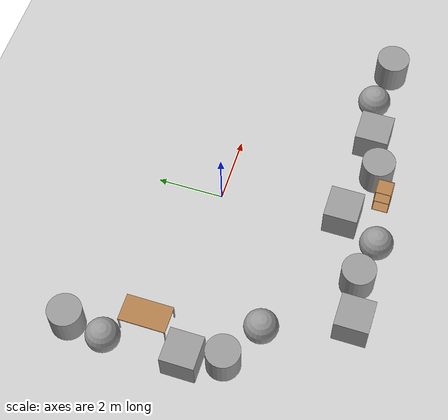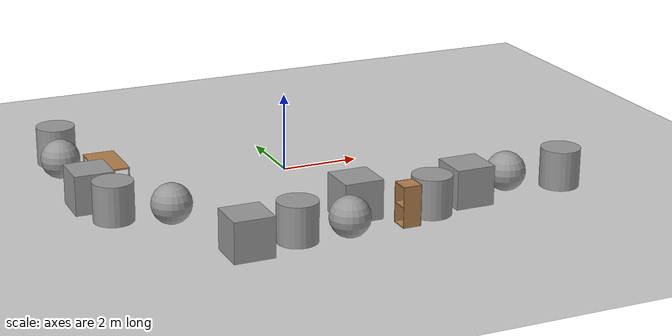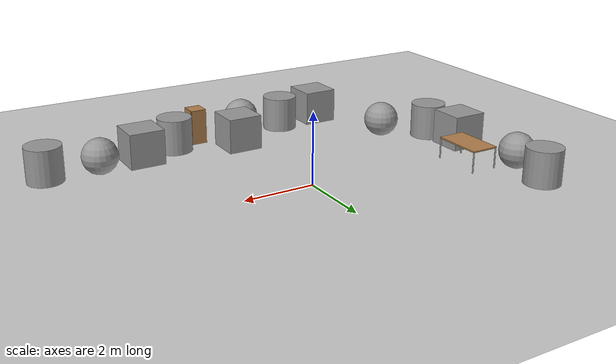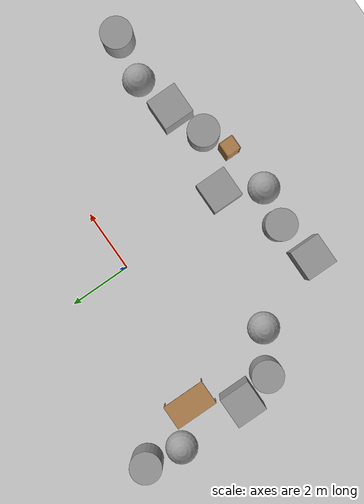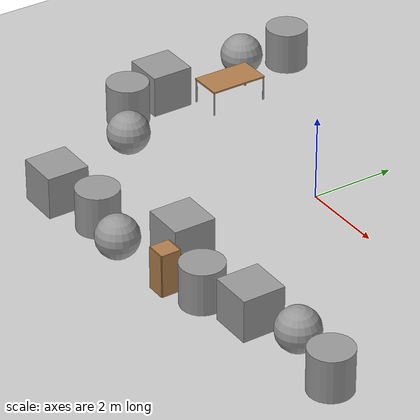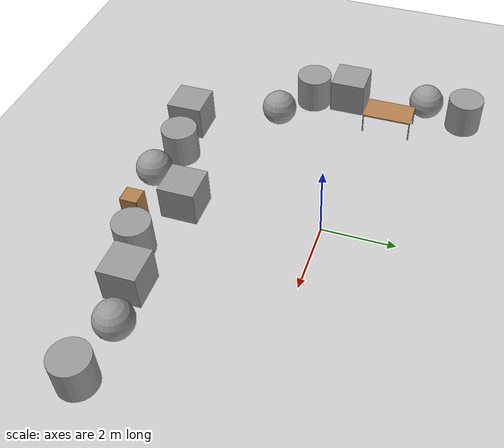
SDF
<sdf version="1.7">
 <world name="default">
  <light name="sun" type="directional">
   <pose>0 0 10 0 -0 0</pose>
   <diffuse>0.8 0.8 0.8 1</diffuse>
   <specular>0.2 0.2 0.2 1</specular>
   <attenuation>
    <range>1000</range>
    <constant>0.9</constant>
    <linear>0.01</linear>
    <quadratic>0.001</quadratic>
   </attenuation>
   <direction>-0.5 0.1 -0.9</direction>
   <spot><inner_angle>0</inner_angle><outer_angle>0</outer_angle><falloff>0</falloff></spot>
  </light>
  <model name="ground_plane">
   <static>1</static>
   <link name="link">
    <collision name="collision">
     <geometry><plane><normal>0 0 1</normal><size>100 100</size></plane></geometry>
     <surface><friction><ode><mu>100</mu><mu2>50</mu2></ode></friction></surface>
    </collision>
    <visual name="visual">
     <cast_shadows>0</cast_shadows>
     <geometry><plane><normal>0 0 1</normal><size>100 100</size></plane></geometry>
     <material>
      <script><uri>file://media/materials/scripts/gazebo.material</uri><name>Gazebo/Grey</name></script>
     </material>
    </visual>
   </link>
  </model>
  <gravity>0 0 -9.8</gravity>
  <magnetic_field>6e-06 2.3e-05 -4.2e-05</magnetic_field>
  <atmosphere type="adiabatic"/>
  <physics name="default_physics" default="0" type="ode">
   <max_step_size>0.001</max_step_size>
   <real_time_factor>1</real_time_factor>
   <real_time_update_rate>1000</real_time_update_rate>
  </physics>
  <scene><ambient>0.4 0.4 0.4 1</ambient><background>0.7 0.7 0.7 1</background><shadows>1</shadows></scene>
  <audio><device>default</device></audio>
  <spherical_coordinates>
   <surface_model>EARTH_WGS84</surface_model>
   <latitude_deg>0</latitude_deg>
   <longitude_deg>0</longitude_deg>
   <elevation>0</elevation>
   <heading_deg>0</heading_deg>
  </spherical_coordinates>
  <model name="cabinet">
   <static>1</static>
   <link name="cabinet_bottom_plate">
    <inertial>
     <pose>0 0 -1 0 -0 0</pose>
     <inertia><ixx>2.05</ixx><ixy>0</ixy><ixz>0</ixz><iyy>2.05</iyy><iyz>0</iyz><izz>2.05</izz></inertia>
     <mass>25</mass>
    </inertial>
    <collision name="cabinet_bottom_plate_geom">
     <pose>0 0 0.01 0 -0 0</pose>
     <geometry><box><size>0.45 0.45 0.02</size></box></geometry>
    </collision>
    <visual name="cabinet_bottom_plate_geom_visual">
     <pose>0 0 0.01 0 -0 0</pose>
     <geometry><box><size>0.45 0.45 0.02</size></box></geometry>
     <material>
      <script><uri>file://media/materials/scripts/gazebo.material</uri><name>Gazebo/Wood</name></script>
     </material>
    </visual>
    <collision name="cabinet_bottom_plate_geom_cabinet_back_plate">
     <pose>0.235 0 0.51 0 -0 0</pose>
     <geometry><box><size>0.02 0.45 1.02</size></box></geometry>
    </collision>
    <visual name="cabinet_bottom_plate_geom_cabinet_back_plate_visual">
     <pose>0.235 0 0.51 0 -0 0</pose>
     <geometry><box><size>0.02 0.45 1.02</size></box></geometry>
     <material>
      <script><uri>file://media/materials/scripts/gazebo.material</uri><name>Gazebo/Wood</name></script>
     </material>
    </visual>
    <collision name="cabinet_bottom_plate_geom_cabinet_left_plate">
     <pose>0 0.235 0.51 0 -0 0</pose>
     <geometry><box><size>0.45 0.02 1.02</size></box></geometry>
    </collision>
    <visual name="cabinet_bottom_plate_geom_cabinet_left_plate_visual">
     <pose>0 0.235 0.51 0 -0 0</pose>
     <geometry><box><size>0.45 0.02 1.02</size></box></geometry>
     <material>
      <script><uri>file://media/materials/scripts/gazebo.material</uri><name>Gazebo/Wood</name></script>
     </material>
    </visual>
    <collision name="cabinet_bottom_plate_geom_cabinet_middle_plate">
     <pose>0 0 0.51 0 -0 0</pose>
     <geometry><box><size>0.45 0.45 0.02</size></box></geometry>
    </collision>
    <visual name="cabinet_bottom_plate_geom_cabinet_middle_plate_visual">
     <pose>0 0 0.51 0 -0 0</pose>
     <geometry><box><size>0.45 0.45 0.02</size></box></geometry>
     <material>
      <script><uri>file://media/materials/scripts/gazebo.material</uri><name>Gazebo/Wood</name></script>
     </material>
    </visual>
    <collision name="cabinet_bottom_plate_geom_cabinet_right_plate">
     <pose>0 -0.235 0.51 0 -0 0</pose>
     <geometry><box><size>0.45 0.02 1.02</size></box></geometry>
    </collision>
    <visual name="cabinet_bottom_plate_geom_cabinet_right_plate_visual">
     <pose>0 -0.235 0.51 0 -0 0</pose>
     <geometry><box><size>0.45 0.02 1.02</size></box></geometry>
     <material>
      <script><uri>file://media/materials/scripts/gazebo.material</uri><name>Gazebo/Wood</name></script>
     </material>
    </visual>
    <collision name="cabinet_bottom_plate_geom_cabinet_top_plate">
     <pose>0 0 1.01 0 -0 0</pose>
     <geometry><box><size>0.45 0.45 0.02</size></box></geometry>
    </collision>
    <visual name="cabinet_bottom_plate_geom_cabinet_top_plate_visual">
     <pose>0 0 1.01 0 -0 0</pose>
     <geometry><box><size>0.45 0.45 0.02</size></box></geometry>
     <material>
      <script><uri>file://media/materials/scripts/gazebo.material</uri><name>Gazebo/Wood</name></script>
     </material>
    </visual>
   </link>
   <pose>1.18875 -4.65304 0 0 -0 0</pose>
  </model>
  <model name="table_short">
   <link name="link">
    <inertial>
     <inertia><ixx>1</ixx><ixy>0</ixy><ixz>0</ixz><iyy>1</iyy><iyz>0</iyz><izz>1</izz></inertia>
     <mass>1</mass>
    </inertial>
    <visual name="visual1">
     <pose>0 0 0.6 0 -0 0</pose>
     <geometry><box><size>1.4 0.8 0.04</size></box></geometry>
     <material>
      <script><uri>file://media/materials/scripts/gazebo.material</uri><name>Gazebo/Wood</name></script>
      <ambient>1 1 1 1</ambient>
      <diffuse>1 1 1 1</diffuse>
      <specular>0.2 0.2 0.2 1</specular>
      <emissive>0 0 0 1</emissive>
      <shader type="vertex"><normal_map>__default__</normal_map></shader>
     </material>
    </visual>
    <visual name="front_left_leg">
     <pose>0.68 0.38 0.3 0 -0 0</pose>
     <geometry><cylinder><radius>0.02</radius><length>0.6</length></cylinder></geometry>
     <material>
      <script><uri>file://media/materials/scripts/gazebo.material</uri><name>Gazebo/Grey</name></script>
      <ambient>0.3 0.3 0.3 1</ambient>
      <diffuse>0.7 0.7 0.7 1</diffuse>
      <specular>0.01 0.01 0.01 1</specular>
      <emissive>0 0 0 1</emissive>
      <shader type="vertex"><normal_map>__default__</normal_map></shader>
     </material>
    </visual>
    <visual name="front_right_leg">
     <pose>0.68 -0.38 0.3 0 -0 0</pose>
     <geometry><cylinder><radius>0.02</radius><length>0.6</length></cylinder></geometry>
     <material>
      <script><uri>file://media/materials/scripts/gazebo.material</uri><name>Gazebo/Grey</name></script>
      <ambient>0.3 0.3 0.3 1</ambient>
      <diffuse>0.7 0.7 0.7 1</diffuse>
      <specular>0.01 0.01 0.01 1</specular>
      <emissive>0 0 0 1</emissive>
      <shader type="vertex"><normal_map>__default__</normal_map></shader>
     </material>
    </visual>
    <visual name="back_right_leg">
     <pose>-0.68 -0.38 0.3 0 -0 0</pose>
     <geometry><cylinder><radius>0.02</radius><length>0.6</length></cylinder></geometry>
     <material>
      <script><uri>file://media/materials/scripts/gazebo.material</uri><name>Gazebo/Grey</name></script>
      <ambient>0.3 0.3 0.3 1</ambient>
      <diffuse>0.7 0.7 0.7 1</diffuse>
      <specular>0.01 0.01 0.01 1</specular>
      <emissive>0 0 0 1</emissive>
      <shader type="vertex"><normal_map>__default__</normal_map></shader>
     </material>
    </visual>
    <visual name="back_left_leg">
     <pose>-0.68 0.38 0.3 0 -0 0</pose>
     <geometry><cylinder><radius>0.02</radius><length>0.6</length></cylinder></geometry>
     <material>
      <script><uri>file://media/materials/scripts/gazebo.material</uri><name>Gazebo/Grey</name></script>
      <ambient>0.3 0.3 0.3 1</ambient>
      <diffuse>0.7 0.7 0.7 1</diffuse>
      <specular>0.01 0.01 0.01 1</specular>
      <emissive>0 0 0 1</emissive>
      <shader type="vertex"><normal_map>__default__</normal_map></shader>
     </material>
    </visual>
    <collision name="front_left_leg">
     <pose>0.68 0.38 0.3 0 -0 0</pose>
     <geometry><cylinder><radius>0.02</radius><length>0.6</length></cylinder></geometry>
     <surface>
      <friction>
       <ode><mu>1</mu><mu2>1</mu2><fdir1>0 0 0</fdir1><slip1>0</slip1><slip2>0</slip2></ode>
       <torsional>
        <coefficient>1</coefficient>
        <patch_radius>0</patch_radius>
        <surface_radius>0</surface_radius>
        <use_patch_radius>1</use_patch_radius>
        <ode><slip>0</slip></ode>
       </torsional>
      </friction>
      <bounce><restitution_coefficient>0</restitution_coefficient><threshold>1e+06</threshold></bounce>
      <contact>
       <collide_without_contact>0</collide_without_contact>
       <collide_without_contact_bitmask>1</collide_without_contact_bitmask>
       <collide_bitmask>1</collide_bitmask>
       <ode>
        <soft_cfm>0</soft_cfm>
        <soft_erp>0.2</soft_erp>
        <kp>1e+13</kp>
        <kd>1</kd>
        <max_vel>0.01</max_vel>
        <min_depth>0</min_depth>
       </ode>
       <bullet>
        <split_impulse>1</split_impulse>
        <split_impulse_penetration_threshold>-0.01</split_impulse_penetration_threshold>
        <soft_cfm>0</soft_cfm>
        <soft_erp>0.2</soft_erp>
        <kp>1e+13</kp>
        <kd>1</kd>
       </bullet>
      </contact>
     </surface>
    </collision>
    <collision name="surface">
     <pose>0 0 0.6 0 -0 0</pose>
     <geometry><box><size>1.5 0.8 0.03</size></box></geometry>
     <surface>
      <friction>
       <ode><mu>0.6</mu><mu2>0.6</mu2><fdir1>0 0 0</fdir1><slip1>0</slip1><slip2>0</slip2></ode>
       <torsional>
        <coefficient>1</coefficient>
        <patch_radius>0</patch_radius>
        <surface_radius>0</surface_radius>
        <use_patch_radius>1</use_patch_radius>
        <ode><slip>0</slip></ode>
       </torsional>
      </friction>
      <bounce><restitution_coefficient>0</restitution_coefficient><threshold>1e+06</threshold></bounce>
      <contact>
       <collide_without_contact>0</collide_without_contact>
       <collide_without_contact_bitmask>1</collide_without_contact_bitmask>
       <collide_bitmask>1</collide_bitmask>
       <ode>
        <soft_cfm>0</soft_cfm>
        <soft_erp>0.2</soft_erp>
        <kp>1e+13</kp>
        <kd>1</kd>
        <max_vel>0.01</max_vel>
        <min_depth>0</min_depth>
       </ode>
       <bullet>
        <split_impulse>1</split_impulse>
        <split_impulse_penetration_threshold>-0.01</split_impulse_penetration_threshold>
        <soft_cfm>0</soft_cfm>
        <soft_erp>0.2</soft_erp>
        <kp>1e+13</kp>
        <kd>1</kd>
       </bullet>
      </contact>
     </surface>
    </collision>
    <collision name="back_right_leg">
     <pose>-0.68 -0.38 0.3 0 -0 0</pose>
     <geometry><cylinder><radius>0.02</radius><length>0.6</length></cylinder></geometry>
     <surface>
      <friction>
       <ode><mu>1</mu><mu2>1</mu2><fdir1>0 0 0</fdir1><slip1>0</slip1><slip2>0</slip2></ode>
       <torsional>
        <coefficient>1</coefficient>
        <patch_radius>0</patch_radius>
        <surface_radius>0</surface_radius>
        <use_patch_radius>1</use_patch_radius>
        <ode><slip>0</slip></ode>
       </torsional>
      </friction>
      <bounce><restitution_coefficient>0</restitution_coefficient><threshold>1e+06</threshold></bounce>
      <contact>
       <collide_without_contact>0</collide_without_contact>
       <collide_without_contact_bitmask>1</collide_without_contact_bitmask>
       <collide_bitmask>1</collide_bitmask>
       <ode>
        <soft_cfm>0</soft_cfm>
        <soft_erp>0.2</soft_erp>
        <kp>1e+13</kp>
        <kd>1</kd>
        <max_vel>0.01</max_vel>
        <min_depth>0</min_depth>
       </ode>
       <bullet>
        <split_impulse>1</split_impulse>
        <split_impulse_penetration_threshold>-0.01</split_impulse_penetration_threshold>
        <soft_cfm>0</soft_cfm>
        <soft_erp>0.2</soft_erp>
        <kp>1e+13</kp>
        <kd>1</kd>
       </bullet>
      </contact>
     </surface>
    </collision>
    <collision name="back_left_leg">
     <pose>-0.68 0.38 0.3 0 -0 0</pose>
     <geometry><cylinder><radius>0.02</radius><length>0.6</length></cylinder></geometry>
     <surface>
      <friction>
       <ode><mu>1</mu><mu2>1</mu2><fdir1>0 0 0</fdir1><slip1>0</slip1><slip2>0</slip2></ode>
       <torsional>
        <coefficient>1</coefficient>
        <patch_radius>0</patch_radius>
        <surface_radius>0</surface_radius>
        <use_patch_radius>1</use_patch_radius>
        <ode><slip>0</slip></ode>
       </torsional>
      </friction>
      <bounce><restitution_coefficient>0</restitution_coefficient><threshold>1e+06</threshold></bounce>
      <contact>
       <collide_without_contact>0</collide_without_contact>
       <collide_without_contact_bitmask>1</collide_without_contact_bitmask>
       <collide_bitmask>1</collide_bitmask>
       <ode>
        <soft_cfm>0</soft_cfm>
        <soft_erp>0.2</soft_erp>
        <kp>1e+13</kp>
        <kd>1</kd>
        <max_vel>0.01</max_vel>
        <min_depth>0</min_depth>
       </ode>
       <bullet>
        <split_impulse>1</split_impulse>
        <split_impulse_penetration_threshold>-0.01</split_impulse_penetration_threshold>
        <soft_cfm>0</soft_cfm>
        <soft_erp>0.2</soft_erp>
        <kp>1e+13</kp>
        <kd>1</kd>
       </bullet>
      </contact>
     </surface>
    </collision>
    <collision name="front_right_leg">
     <pose>0.68 -0.38 0.3 0 -0 0</pose>
     <geometry><cylinder><radius>0.02</radius><length>0.6</length></cylinder></geometry>
     <surface>
      <friction>
       <ode><mu>1</mu><mu2>1</mu2><fdir1>0 0 0</fdir1><slip1>0</slip1><slip2>0</slip2></ode>
       <torsional>
        <coefficient>1</coefficient>
        <patch_radius>0</patch_radius>
        <surface_radius>0</surface_radius>
        <use_patch_radius>1</use_patch_radius>
        <ode><slip>0</slip></ode>
       </torsional>
      </friction>
      <bounce><restitution_coefficient>0</restitution_coefficient><threshold>1e+06</threshold></bounce>
      <contact>
       <collide_without_contact>0</collide_without_contact>
       <collide_without_contact_bitmask>1</collide_without_contact_bitmask>
       <collide_bitmask>1</collide_bitmask>
       <ode>
        <soft_cfm>0</soft_cfm>
        <soft_erp>0.2</soft_erp>
        <kp>1e+13</kp>
        <kd>1</kd>
        <max_vel>0.01</max_vel>
        <min_depth>0</min_depth>
       </ode>
       <bullet>
        <split_impulse>1</split_impulse>
        <split_impulse_penetration_threshold>-0.01</split_impulse_penetration_threshold>
        <soft_cfm>0</soft_cfm>
        <soft_erp>0.2</soft_erp>
        <kp>1e+13</kp>
        <kd>1</kd>
       </bullet>
      </contact>
     </surface>
    </collision>
   </link>
   <static>0</static>
   <pose>-4.52818 0.7433 -6e-06 2e-06 -4e-06 1.5708</pose>
  </model>
  <model name="unit_cylinder">
   <pose>-5.25503 2.84097 0.499992 -3e-06 3e-06 0</pose>
   <link name="link">
    <inertial>
     <mass>1</mass>
     <inertia><ixx>0.145833</ixx><ixy>0</ixy><ixz>0</ixz><iyy>0.145833</iyy><iyz>0</iyz><izz>0.125</izz></inertia>
    </inertial>
    <collision name="collision">
     <geometry><cylinder><radius>0.5</radius><length>1</length></cylinder></geometry>
    </collision>
    <visual name="visual">
     <geometry><cylinder><radius>0.5</radius><length>1</length></cylinder></geometry>
     <material>
      <script><name>Gazebo/Grey</name><uri>file://media/materials/scripts/gazebo.material</uri></script>
     </material>
    </visual>
   </link>
  </model>
  <model name="unit_sphere">
   <pose>-5.45122 1.68297 0.5 0 -0 0</pose>
   <link name="link">
    <inertial>
     <mass>1</mass>
     <inertia><ixx>0.1</ixx><ixy>0</ixy><ixz>0</ixz><iyy>0.1</iyy><iyz>0</iyz><izz>0.1</izz></inertia>
    </inertial>
    <collision name="collision"><geometry><sphere><radius>0.5</radius></sphere></geometry></collision>
    <visual name="visual">
     <geometry><sphere><radius>0.5</radius></sphere></geometry>
     <material>
      <script><name>Gazebo/Grey</name><uri>file://media/materials/scripts/gazebo.material</uri></script>
     </material>
    </visual>
   </link>
  </model>
  <model name="unit_box">
   <pose>-5.35116 -0.620161 0.499995 0 1e-05 0</pose>
   <link name="link">
    <inertial>
     <mass>1</mass>
     <inertia>
      <ixx>0.166667</ixx>
      <ixy>0</ixy>
      <ixz>0</ixz>
      <iyy>0.166667</iyy>
      <iyz>0</iyz>
      <izz>0.166667</izz>
     </inertia>
    </inertial>
    <collision name="collision"><geometry><box><size>1 1 1</size></box></geometry></collision>
    <visual name="visual">
     <geometry><box><size>1 1 1</size></box></geometry>
     <material>
      <script><name>Gazebo/Grey</name><uri>file://media/materials/scripts/gazebo.material</uri></script>
     </material>
    </visual>
   </link>
  </model>
  <model name="unit_cylinder_0">
   <pose>-5.08552 -1.69688 0.499998 3e-06 -4e-06 0</pose>
   <link name="link">
    <inertial>
     <mass>1</mass>
     <inertia><ixx>0.145833</ixx><ixy>0</ixy><ixz>0</ixz><iyy>0.145833</iyy><iyz>0</iyz><izz>0.125</izz></inertia>
    </inertial>
    <collision name="collision">
     <geometry><cylinder><radius>0.5</radius><length>1</length></cylinder></geometry>
    </collision>
    <visual name="visual">
     <geometry><cylinder><radius>0.5</radius><length>1</length></cylinder></geometry>
     <material>
      <script><name>Gazebo/Grey</name><uri>file://media/materials/scripts/gazebo.material</uri></script>
     </material>
    </visual>
   </link>
  </model>
  <model name="unit_sphere_0">
   <pose>-3.88282 -2.41981 0.5 0 -0 0</pose>
   <link name="link">
    <inertial>
     <mass>1</mass>
     <inertia><ixx>0.1</ixx><ixy>0</ixy><ixz>0</ixz><iyy>0.1</iyy><iyz>0</iyz><izz>0.1</izz></inertia>
    </inertial>
    <collision name="collision"><geometry><sphere><radius>0.5</radius></sphere></geometry></collision>
    <visual name="visual">
     <geometry><sphere><radius>0.5</radius></sphere></geometry>
     <material>
      <script><name>Gazebo/Grey</name><uri>file://media/materials/scripts/gazebo.material</uri></script>
     </material>
    </visual>
   </link>
  </model>
  <model name="unit_box_0">
   <pose>-2.93253 -4.82625 0.499995 -1e-05 -0 -0</pose>
   <link name="link">
    <inertial>
     <mass>1</mass>
     <inertia>
      <ixx>0.166667</ixx>
      <ixy>0</ixy>
      <ixz>0</ixz>
      <iyy>0.166667</iyy>
      <iyz>0</iyz>
      <izz>0.166667</izz>
     </inertia>
    </inertial>
    <collision name="collision"><geometry><box><size>1 1 1</size></box></geometry></collision>
    <visual name="visual">
     <geometry><box><size>1 1 1</size></box></geometry>
     <material>
      <script><name>Gazebo/Grey</name><uri>file://media/materials/scripts/gazebo.material</uri></script>
     </material>
    </visual>
   </link>
  </model>
  <model name="unit_cylinder_1">
   <pose>-1.60028 -4.59641 0.499992 -3e-06 -4e-06 -0</pose>
   <link name="link">
    <inertial>
     <mass>1</mass>
     <inertia><ixx>0.145833</ixx><ixy>0</ixy><ixz>0</ixz><iyy>0.145833</iyy><iyz>0</iyz><izz>0.125</izz></inertia>
    </inertial>
    <collision name="collision">
     <geometry><cylinder><radius>0.5</radius><length>1</length></cylinder></geometry>
    </collision>
    <visual name="visual">
     <geometry><cylinder><radius>0.5</radius><length>1</length></cylinder></geometry>
     <material>
      <script><name>Gazebo/Grey</name><uri>file://media/materials/scripts/gazebo.material</uri></script>
     </material>
    </visual>
   </link>
  </model>
  <model name="unit_sphere_1">
   <pose>-0.391639 -4.84213 0.5 0 -0 0</pose>
   <link name="link">
    <inertial>
     <mass>1</mass>
     <inertia><ixx>0.1</ixx><ixy>0</ixy><ixz>0</ixz><iyy>0.1</iyy><iyz>0</iyz><izz>0.1</izz></inertia>
    </inertial>
    <collision name="collision"><geometry><sphere><radius>0.5</radius></sphere></geometry></collision>
    <visual name="visual">
     <geometry><sphere><radius>0.5</radius></sphere></geometry>
     <material>
      <script><name>Gazebo/Grey</name><uri>file://media/materials/scripts/gazebo.material</uri></script>
     </material>
    </visual>
   </link>
  </model>
  <model name="unit_box_1">
   <pose>0.302174 -3.65914 0.499995 0 1e-05 0</pose>
   <link name="link">
    <inertial>
     <mass>1</mass>
     <inertia>
      <ixx>0.166667</ixx>
      <ixy>0</ixy>
      <ixz>0</ixz>
      <iyy>0.166667</iyy>
      <iyz>0</iyz>
      <izz>0.166667</izz>
     </inertia>
    </inertial>
    <collision name="collision"><geometry><box><size>1 1 1</size></box></geometry></collision>
    <visual name="visual">
     <geometry><box><size>1 1 1</size></box></geometry>
     <material>
      <script><name>Gazebo/Grey</name><uri>file://media/materials/scripts/gazebo.material</uri></script>
     </material>
    </visual>
   </link>
  </model>
  <model name="unit_cylinder_2">
   <pose>2.01714 -4.27494 0.499993 -3e-06 -4e-06 -0</pose>
   <link name="link">
    <inertial>
     <mass>1</mass>
     <inertia><ixx>0.145833</ixx><ixy>0</ixy><ixz>0</ixz><iyy>0.145833</iyy><iyz>0</iyz><izz>0.125</izz></inertia>
    </inertial>
    <collision name="collision">
     <geometry><cylinder><radius>0.5</radius><length>1</length></cylinder></geometry>
    </collision>
    <visual name="visual">
     <geometry><cylinder><radius>0.5</radius><length>1</length></cylinder></geometry>
     <material>
      <script><name>Gazebo/Grey</name><uri>file://media/materials/scripts/gazebo.material</uri></script>
     </material>
    </visual>
   </link>
  </model>
  <model name="unit_box_2">
   <pose>3.17808 -3.86364 0.499995 0 1e-05 0</pose>
   <link name="link">
    <inertial>
     <mass>1</mass>
     <inertia>
      <ixx>0.166667</ixx>
      <ixy>0</ixy>
      <ixz>0</ixz>
      <iyy>0.166667</iyy>
      <iyz>0</iyz>
      <izz>0.166667</izz>
     </inertia>
    </inertial>
    <collision name="collision"><geometry><box><size>1 1 1</size></box></geometry></collision>
    <visual name="visual">
     <geometry><box><size>1 1 1</size></box></geometry>
     <material>
      <script><name>Gazebo/Grey</name><uri>file://media/materials/scripts/gazebo.material</uri></script>
     </material>
    </visual>
   </link>
  </model>
  <model name="unit_sphere_2">
   <pose>4.45488 -3.57481 0.5 0 -0 0</pose>
   <link name="link">
    <inertial>
     <mass>1</mass>
     <inertia><ixx>0.1</ixx><ixy>0</ixy><ixz>0</ixz><iyy>0.1</iyy><iyz>0</iyz><izz>0.1</izz></inertia>
    </inertial>
    <collision name="collision"><geometry><sphere><radius>0.5</radius></sphere></geometry></collision>
    <visual name="visual">
     <geometry><sphere><radius>0.5</radius></sphere></geometry>
     <material>
      <script><name>Gazebo/Grey</name><uri>file://media/materials/scripts/gazebo.material</uri></script>
     </material>
    </visual>
   </link>
  </model>
  <model name="unit_cylinder_3">
   <pose>5.88414 -3.79176 0.499997 3e-06 4e-06 -0</pose>
   <link name="link">
    <inertial>
     <mass>1</mass>
     <inertia><ixx>0.145833</ixx><ixy>0</ixy><ixz>0</ixz><iyy>0.145833</iyy><iyz>0</iyz><izz>0.125</izz></inertia>
    </inertial>
    <collision name="collision">
     <geometry><cylinder><radius>0.5</radius><length>1</length></cylinder></geometry>
    </collision>
    <visual name="visual">
     <geometry><cylinder><radius>0.5</radius><length>1</length></cylinder></geometry>
     <material>
      <script><name>Gazebo/Grey</name><uri>file://media/materials/scripts/gazebo.material</uri></script>
     </material>
    </visual>
   </link>
  </model>
 </world>
</sdf>
